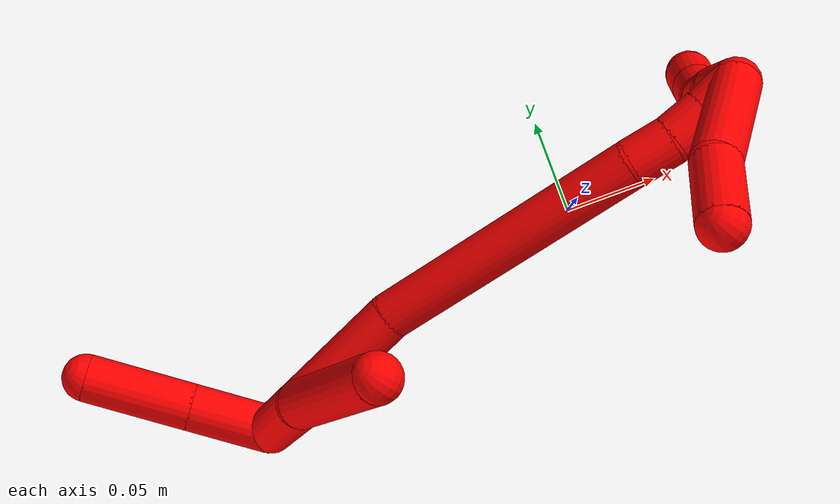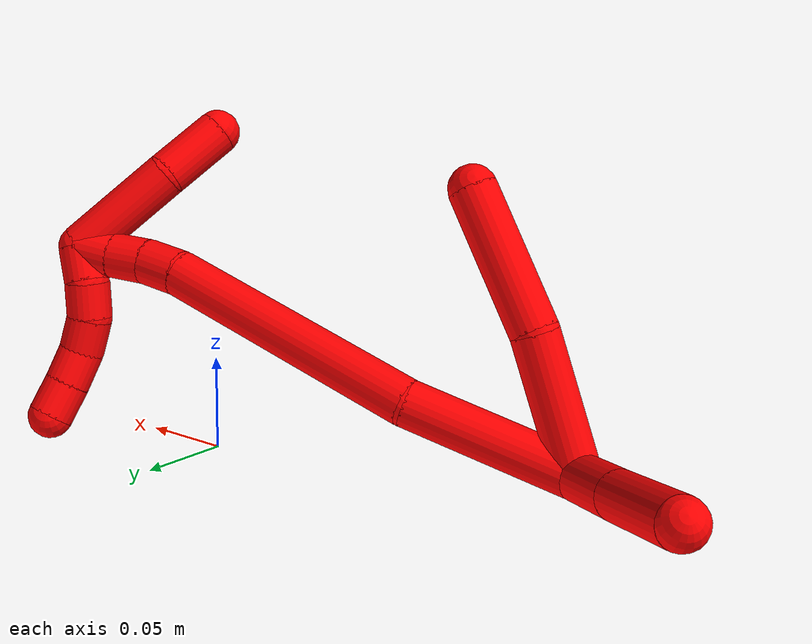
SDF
<sdf version="1.7">
 <world name="default">
  <model name="2">
   <static>0</static>
   <link name="2">
    <collision name="collision-cylinder-e_1_2_8">
     <pose>0.021486 -0.024556 0.016529 0.978353 0.627865 0.342282</pose>
     <geometry><cylinder><radius>0.0125</radius><length>0.073152</length></cylinder></geometry>
     <surface>
      <friction><ode><mu>1.16</mu><mu2>1.16</mu2><slip1>0</slip1><slip2>0</slip2></ode></friction>
      <contact><ode><kp>1e+06</kp><kd>1</kd><max_vel>0</max_vel><min_depth>0.001</min_depth></ode></contact>
     </surface>
    </collision>
    <visual name="visual-cylinder-e_1_2_8">
     <pose>0.021486 -0.024556 0.016529 0.978353 0.627865 0.342282</pose>
     <geometry><cylinder><radius>0.0125</radius><length>0.073152</length></cylinder></geometry>
     <material><ambient>1 0 0 1</ambient></material>
    </visual>
    <collision name="collision-cylinder-e_2_8_6">
     <pose>0.069204 -0.075721 0.042009 1.24627 0.751496 0.552504</pose>
     <geometry><cylinder><radius>0.0125</radius><length>0.076848</length></cylinder></geometry>
     <surface>
      <friction><ode><mu>1.16</mu><mu2>1.16</mu2><slip1>0</slip1><slip2>0</slip2></ode></friction>
      <contact><ode><kp>1e+06</kp><kd>1</kd><max_vel>0</max_vel><min_depth>0.001</min_depth></ode></contact>
     </surface>
    </collision>
    <visual name="visual-cylinder-e_2_8_6">
     <pose>0.069204 -0.075721 0.042009 1.24627 0.751496 0.552504</pose>
     <geometry><cylinder><radius>0.0125</radius><length>0.076848</length></cylinder></geometry>
     <material><ambient>1 0 0 1</ambient></material>
    </visual>
    <collision name="collision-cylinder-e_1_2_9">
     <pose>-0.008827 0.007532 0.018691 -0.383097 -0.412848 0.081174</pose>
     <geometry><cylinder><radius>0.0125</radius><length>0.044</length></cylinder></geometry>
     <surface>
      <friction><ode><mu>1.16</mu><mu2>1.16</mu2><slip1>0</slip1><slip2>0</slip2></ode></friction>
      <contact><ode><kp>1e+06</kp><kd>1</kd><max_vel>0</max_vel><min_depth>0.001</min_depth></ode></contact>
     </surface>
    </collision>
    <visual name="visual-cylinder-e_1_2_9">
     <pose>-0.008827 0.007532 0.018691 -0.383097 -0.412848 0.081174</pose>
     <geometry><cylinder><radius>0.0125</radius><length>0.044</length></cylinder></geometry>
     <material><ambient>1 0 0 1</ambient></material>
    </visual>
    <collision name="collision-cylinder-e_2_9_5">
     <pose>-0.028693 0.024317 0.061393 -0.367797 -0.405259 0.07639</pose>
     <geometry><cylinder><radius>0.0125</radius><length>0.056</length></cylinder></geometry>
     <surface>
      <friction><ode><mu>1.16</mu><mu2>1.16</mu2><slip1>0</slip1><slip2>0</slip2></ode></friction>
      <contact><ode><kp>1e+06</kp><kd>1</kd><max_vel>0</max_vel><min_depth>0.001</min_depth></ode></contact>
     </surface>
    </collision>
    <visual name="visual-cylinder-e_2_9_5">
     <pose>-0.028693 0.024317 0.061393 -0.367797 -0.405259 0.07639</pose>
     <geometry><cylinder><radius>0.0125</radius><length>0.056</length></cylinder></geometry>
     <material><ambient>1 0 0 1</ambient></material>
    </visual>
    <collision name="collision-cylinder-e_1_2_10">
     <pose>0.045203 -0.00253 -0.001272 2.03662 1.50824 1.97993</pose>
     <geometry><cylinder><radius>0.0125</radius><length>0.090582</length></cylinder></geometry>
     <surface>
      <friction><ode><mu>1.16</mu><mu2>1.16</mu2><slip1>0</slip1><slip2>0</slip2></ode></friction>
      <contact><ode><kp>1e+06</kp><kd>1</kd><max_vel>0</max_vel><min_depth>0.001</min_depth></ode></contact>
     </surface>
    </collision>
    <visual name="visual-cylinder-e_1_2_10">
     <pose>0.045203 -0.00253 -0.001272 2.03662 1.50824 1.97993</pose>
     <geometry><cylinder><radius>0.0125</radius><length>0.090582</length></cylinder></geometry>
     <material><ambient>1 0 0 1</ambient></material>
    </visual>
    <collision name="collision-cylinder-e_2_10_11">
     <pose>0.160968 -0.020635 -0.012962 2.16036 1.31122 1.92747</pose>
     <geometry><cylinder><radius>0.0125</radius><length>0.146017</length></cylinder></geometry>
     <surface>
      <friction><ode><mu>1.16</mu><mu2>1.16</mu2><slip1>0</slip1><slip2>0</slip2></ode></friction>
      <contact><ode><kp>1e+06</kp><kd>1</kd><max_vel>0</max_vel><min_depth>0.001</min_depth></ode></contact>
     </surface>
    </collision>
    <visual name="visual-cylinder-e_2_10_11">
     <pose>0.160968 -0.020635 -0.012962 2.16036 1.31122 1.92747</pose>
     <geometry><cylinder><radius>0.0125</radius><length>0.146017</length></cylinder></geometry>
     <material><ambient>1 0 0 1</ambient></material>
    </visual>
    <collision name="collision-cylinder-e_3_11_12">
     <pose>0.242256 -0.037314 -0.026425 2.79369 1.2776 2.67691</pose>
     <geometry><cylinder><radius>0.0125</radius><length>0.022407</length></cylinder></geometry>
     <surface>
      <friction><ode><mu>1.16</mu><mu2>1.16</mu2><slip1>0</slip1><slip2>0</slip2></ode></friction>
      <contact><ode><kp>1e+06</kp><kd>1</kd><max_vel>0</max_vel><min_depth>0.001</min_depth></ode></contact>
     </surface>
    </collision>
    <visual name="visual-cylinder-e_3_11_12">
     <pose>0.242256 -0.037314 -0.026425 2.79369 1.2776 2.67691</pose>
     <geometry><cylinder><radius>0.0125</radius><length>0.022407</length></cylinder></geometry>
     <material><ambient>1 0 0 1</ambient></material>
    </visual>
    <collision name="collision-cylinder-e_4_12_13">
     <pose>0.263027 -0.037627 -0.031686 -2.79862 1.34062 -2.71143</pose>
     <geometry><cylinder><radius>0.0125</radius><length>0.020636</length></cylinder></geometry>
     <surface>
      <friction><ode><mu>1.16</mu><mu2>1.16</mu2><slip1>0</slip1><slip2>0</slip2></ode></friction>
      <contact><ode><kp>1e+06</kp><kd>1</kd><max_vel>0</max_vel><min_depth>0.001</min_depth></ode></contact>
     </surface>
    </collision>
    <visual name="visual-cylinder-e_4_12_13">
     <pose>0.263027 -0.037627 -0.031686 -2.79862 1.34062 -2.71143</pose>
     <geometry><cylinder><radius>0.0125</radius><length>0.020636</length></cylinder></geometry>
     <material><ambient>1 0 0 1</ambient></material>
    </visual>
    <collision name="collision-cylinder-e_5_13_1">
     <pose>0.283178 -0.036322 -0.035018 -2.71023 1.44992 -2.6567</pose>
     <geometry><cylinder><radius>0.0125</radius><length>0.020358</length></cylinder></geometry>
     <surface>
      <friction><ode><mu>1.16</mu><mu2>1.16</mu2><slip1>0</slip1><slip2>0</slip2></ode></friction>
      <contact><ode><kp>1e+06</kp><kd>1</kd><max_vel>0</max_vel><min_depth>0.001</min_depth></ode></contact>
     </surface>
    </collision>
    <visual name="visual-cylinder-e_5_13_1">
     <pose>0.283178 -0.036322 -0.035018 -2.71023 1.44992 -2.6567</pose>
     <geometry><cylinder><radius>0.0125</radius><length>0.020358</length></cylinder></geometry>
     <material><ambient>1 0 0 1</ambient></material>
    </visual>
    <collision name="collision-cylinder-e_1_1_14">
     <pose>0.277856 -0.061169 -0.026887 1.22118 -0.519197 -0.367527</pose>
     <geometry><cylinder><radius>0.0125</radius><length>0.06218</length></cylinder></geometry>
     <surface>
      <friction><ode><mu>1.16</mu><mu2>1.16</mu2><slip1>0</slip1><slip2>0</slip2></ode></friction>
      <contact><ode><kp>1e+06</kp><kd>1</kd><max_vel>0</max_vel><min_depth>0.001</min_depth></ode></contact>
     </surface>
    </collision>
    <visual name="visual-cylinder-e_1_1_14">
     <pose>0.277856 -0.061169 -0.026887 1.22118 -0.519197 -0.367527</pose>
     <geometry><cylinder><radius>0.0125</radius><length>0.06218</length></cylinder></geometry>
     <material><ambient>1 0 0 1</ambient></material>
    </visual>
    <collision name="collision-cylinder-e_2_14_4">
     <pose>0.25454 -0.103678 -0.016528 1.50602 -0.430384 -0.404125</pose>
     <geometry><cylinder><radius>0.0125</radius><length>0.03782</length></cylinder></geometry>
     <surface>
      <friction><ode><mu>1.16</mu><mu2>1.16</mu2><slip1>0</slip1><slip2>0</slip2></ode></friction>
      <contact><ode><kp>1e+06</kp><kd>1</kd><max_vel>0</max_vel><min_depth>0.001</min_depth></ode></contact>
     </surface>
    </collision>
    <visual name="visual-cylinder-e_2_14_4">
     <pose>0.25454 -0.103678 -0.016528 1.50602 -0.430384 -0.404125</pose>
     <geometry><cylinder><radius>0.0125</radius><length>0.03782</length></cylinder></geometry>
     <material><ambient>1 0 0 1</ambient></material>
    </visual>
    <collision name="collision-cylinder-e_1_1_15">
     <pose>0.288208 -0.027941 -0.039646 -1.99077 -0.532225 0.795659</pose>
     <geometry><cylinder><radius>0.0125</radius><length>0.02</length></cylinder></geometry>
     <surface>
      <friction><ode><mu>1.16</mu><mu2>1.16</mu2><slip1>0</slip1><slip2>0</slip2></ode></friction>
      <contact><ode><kp>1e+06</kp><kd>1</kd><max_vel>0</max_vel><min_depth>0.001</min_depth></ode></contact>
     </surface>
    </collision>
    <visual name="visual-cylinder-e_1_1_15">
     <pose>0.288208 -0.027941 -0.039646 -1.99077 -0.532225 0.795659</pose>
     <geometry><cylinder><radius>0.0125</radius><length>0.02</length></cylinder></geometry>
     <material><ambient>1 0 0 1</ambient></material>
    </visual>
    <collision name="collision-cylinder-e_2_15_16">
     <pose>0.279661 -0.012607 -0.048835 -2.22082 -0.35461 0.69344</pose>
     <geometry><cylinder><radius>0.0125</radius><length>0.02</length></cylinder></geometry>
     <surface>
      <friction><ode><mu>1.16</mu><mu2>1.16</mu2><slip1>0</slip1><slip2>0</slip2></ode></friction>
      <contact><ode><kp>1e+06</kp><kd>1</kd><max_vel>0</max_vel><min_depth>0.001</min_depth></ode></contact>
     </surface>
    </collision>
    <visual name="visual-cylinder-e_2_15_16">
     <pose>0.279661 -0.012607 -0.048835 -2.22082 -0.35461 0.69344</pose>
     <geometry><cylinder><radius>0.0125</radius><length>0.02</length></cylinder></geometry>
     <material><ambient>1 0 0 1</ambient></material>
    </visual>
    <collision name="collision-cylinder-e_3_16_17">
     <pose>0.275786 0.002991 -0.060316 -2.19077 -0.040316 0.078285</pose>
     <geometry><cylinder><radius>0.0125</radius><length>0.02</length></cylinder></geometry>
     <surface>
      <friction><ode><mu>1.16</mu><mu2>1.16</mu2><slip1>0</slip1><slip2>0</slip2></ode></friction>
      <contact><ode><kp>1e+06</kp><kd>1</kd><max_vel>0</max_vel><min_depth>0.001</min_depth></ode></contact>
     </surface>
    </collision>
    <visual name="visual-cylinder-e_3_16_17">
     <pose>0.275786 0.002991 -0.060316 -2.19077 -0.040316 0.078285</pose>
     <geometry><cylinder><radius>0.0125</radius><length>0.02</length></cylinder></geometry>
     <material><ambient>1 0 0 1</ambient></material>
    </visual>
    <collision name="collision-cylinder-e_4_17_18">
     <pose>0.275836 0.020545 -0.069441 -1.90951 0.045333 -0.064023</pose>
     <geometry><cylinder><radius>0.0125</radius><length>0.02</length></cylinder></geometry>
     <surface>
      <friction><ode><mu>1.16</mu><mu2>1.16</mu2><slip1>0</slip1><slip2>0</slip2></ode></friction>
      <contact><ode><kp>1e+06</kp><kd>1</kd><max_vel>0</max_vel><min_depth>0.001</min_depth></ode></contact>
     </surface>
    </collision>
    <visual name="visual-cylinder-e_4_17_18">
     <pose>0.275836 0.020545 -0.069441 -1.90951 0.045333 -0.064023</pose>
     <geometry><cylinder><radius>0.0125</radius><length>0.02</length></cylinder></geometry>
     <material><ambient>1 0 0 1</ambient></material>
    </visual>
    <collision name="collision-cylinder-e_5_18_3">
     <pose>0.277162 0.039539 -0.075521 -1.8516 0.087446 -0.116176</pose>
     <geometry><cylinder><radius>0.0125</radius><length>0.02</length></cylinder></geometry>
     <surface>
      <friction><ode><mu>1.16</mu><mu2>1.16</mu2><slip1>0</slip1><slip2>0</slip2></ode></friction>
      <contact><ode><kp>1e+06</kp><kd>1</kd><max_vel>0</max_vel><min_depth>0.001</min_depth></ode></contact>
     </surface>
    </collision>
    <visual name="visual-cylinder-e_5_18_3">
     <pose>0.277162 0.039539 -0.075521 -1.8516 0.087446 -0.116176</pose>
     <geometry><cylinder><radius>0.0125</radius><length>0.02</length></cylinder></geometry>
     <material><ambient>1 0 0 1</ambient></material>
    </visual>
    <collision name="collision-sphere-3">
     <pose>0.278036 0.04911 -0.078282 0 -0 0</pose>
     <geometry><sphere><radius>0.0125</radius></sphere></geometry>
     <surface>
      <friction><ode><mu>1.16</mu><mu2>1.16</mu2><slip1>0</slip1><slip2>0</slip2></ode></friction>
      <contact><ode><kp>1e+06</kp><kd>1</kd><max_vel>0</max_vel><min_depth>0.001</min_depth></ode></contact>
     </surface>
    </collision>
    <visual name="visual-sphere-3">
     <pose>0.278036 0.04911 -0.078282 0 -0 0</pose>
     <geometry><sphere><radius>0.0125</radius></sphere></geometry>
     <material><ambient>1 0 0 1</ambient></material>
    </visual>
    <collision name="collision-sphere-10">
     <pose>0.090405 -0.005059 -0.002543 0 -0 0</pose>
     <geometry><sphere><radius>0.0125</radius></sphere></geometry>
     <surface>
      <friction><ode><mu>1.16</mu><mu2>1.16</mu2><slip1>0</slip1><slip2>0</slip2></ode></friction>
      <contact><ode><kp>1e+06</kp><kd>1</kd><max_vel>0</max_vel><min_depth>0.001</min_depth></ode></contact>
     </surface>
    </collision>
    <visual name="visual-sphere-10">
     <pose>0.090405 -0.005059 -0.002543 0 -0 0</pose>
     <geometry><sphere><radius>0.0125</radius></sphere></geometry>
     <material><ambient>1 0 0 1</ambient></material>
    </visual>
    <collision name="collision-sphere-5">
     <pose>-0.039732 0.03357 0.085404 0 -0 0</pose>
     <geometry><sphere><radius>0.0125</radius></sphere></geometry>
     <surface>
      <friction><ode><mu>1.16</mu><mu2>1.16</mu2><slip1>0</slip1><slip2>0</slip2></ode></friction>
      <contact><ode><kp>1e+06</kp><kd>1</kd><max_vel>0</max_vel><min_depth>0.001</min_depth></ode></contact>
     </surface>
    </collision>
    <visual name="visual-sphere-5">
     <pose>-0.039732 0.03357 0.085404 0 -0 0</pose>
     <geometry><sphere><radius>0.0125</radius></sphere></geometry>
     <material><ambient>1 0 0 1</ambient></material>
    </visual>
    <collision name="collision-sphere-6">
     <pose>0.095437 -0.102331 0.050961 0 -0 0</pose>
     <geometry><sphere><radius>0.0125</radius></sphere></geometry>
     <surface>
      <friction><ode><mu>1.16</mu><mu2>1.16</mu2><slip1>0</slip1><slip2>0</slip2></ode></friction>
      <contact><ode><kp>1e+06</kp><kd>1</kd><max_vel>0</max_vel><min_depth>0.001</min_depth></ode></contact>
     </surface>
    </collision>
    <visual name="visual-sphere-6">
     <pose>0.095437 -0.102331 0.050961 0 -0 0</pose>
     <geometry><sphere><radius>0.0125</radius></sphere></geometry>
     <material><ambient>1 0 0 1</ambient></material>
    </visual>
    <collision name="collision-sphere-9">
     <pose>-0.017654 0.015065 0.037381 0 -0 0</pose>
     <geometry><sphere><radius>0.0125</radius></sphere></geometry>
     <surface>
      <friction><ode><mu>1.16</mu><mu2>1.16</mu2><slip1>0</slip1><slip2>0</slip2></ode></friction>
      <contact><ode><kp>1e+06</kp><kd>1</kd><max_vel>0</max_vel><min_depth>0.001</min_depth></ode></contact>
     </surface>
    </collision>
    <visual name="visual-sphere-9">
     <pose>-0.017654 0.015065 0.037381 0 -0 0</pose>
     <geometry><sphere><radius>0.0125</radius></sphere></geometry>
     <material><ambient>1 0 0 1</ambient></material>
    </visual>
    <collision name="collision-sphere-2">
     <geometry><sphere><radius>0.0125</radius></sphere></geometry>
     <surface>
      <friction><ode><mu>1.16</mu><mu2>1.16</mu2><slip1>0</slip1><slip2>0</slip2></ode></friction>
      <contact><ode><kp>1e+06</kp><kd>1</kd><max_vel>0</max_vel><min_depth>0.001</min_depth></ode></contact>
     </surface>
    </collision>
    <visual name="visual-sphere-2">
     <geometry><sphere><radius>0.0125</radius></sphere></geometry>
     <material><ambient>1 0 0 1</ambient></material>
    </visual>
    <collision name="collision-sphere-8">
     <pose>0.042971 -0.049112 0.033057 0 -0 0</pose>
     <geometry><sphere><radius>0.0125</radius></sphere></geometry>
     <surface>
      <friction><ode><mu>1.16</mu><mu2>1.16</mu2><slip1>0</slip1><slip2>0</slip2></ode></friction>
      <contact><ode><kp>1e+06</kp><kd>1</kd><max_vel>0</max_vel><min_depth>0.001</min_depth></ode></contact>
     </surface>
    </collision>
    <visual name="visual-sphere-8">
     <pose>0.042971 -0.049112 0.033057 0 -0 0</pose>
     <geometry><sphere><radius>0.0125</radius></sphere></geometry>
     <material><ambient>1 0 0 1</ambient></material>
    </visual>
    <collision name="collision-sphere-11">
     <pose>0.23153 -0.03621 -0.023381 0 -0 0</pose>
     <geometry><sphere><radius>0.0125</radius></sphere></geometry>
     <surface>
      <friction><ode><mu>1.16</mu><mu2>1.16</mu2><slip1>0</slip1><slip2>0</slip2></ode></friction>
      <contact><ode><kp>1e+06</kp><kd>1</kd><max_vel>0</max_vel><min_depth>0.001</min_depth></ode></contact>
     </surface>
    </collision>
    <visual name="visual-sphere-11">
     <pose>0.23153 -0.03621 -0.023381 0 -0 0</pose>
     <geometry><sphere><radius>0.0125</radius></sphere></geometry>
     <material><ambient>1 0 0 1</ambient></material>
    </visual>
    <collision name="collision-sphere-12">
     <pose>0.252981 -0.038418 -0.029469 0 -0 0</pose>
     <geometry><sphere><radius>0.0125</radius></sphere></geometry>
     <surface>
      <friction><ode><mu>1.16</mu><mu2>1.16</mu2><slip1>0</slip1><slip2>0</slip2></ode></friction>
      <contact><ode><kp>1e+06</kp><kd>1</kd><max_vel>0</max_vel><min_depth>0.001</min_depth></ode></contact>
     </surface>
    </collision>
    <visual name="visual-sphere-12">
     <pose>0.252981 -0.038418 -0.029469 0 -0 0</pose>
     <geometry><sphere><radius>0.0125</radius></sphere></geometry>
     <material><ambient>1 0 0 1</ambient></material>
    </visual>
    <collision name="collision-sphere-13">
     <pose>0.273073 -0.036835 -0.033903 0 -0 0</pose>
     <geometry><sphere><radius>0.0125</radius></sphere></geometry>
     <surface>
      <friction><ode><mu>1.16</mu><mu2>1.16</mu2><slip1>0</slip1><slip2>0</slip2></ode></friction>
      <contact><ode><kp>1e+06</kp><kd>1</kd><max_vel>0</max_vel><min_depth>0.001</min_depth></ode></contact>
     </surface>
    </collision>
    <visual name="visual-sphere-13">
     <pose>0.273073 -0.036835 -0.033903 0 -0 0</pose>
     <geometry><sphere><radius>0.0125</radius></sphere></geometry>
     <material><ambient>1 0 0 1</ambient></material>
    </visual>
    <collision name="collision-sphere-1">
     <pose>0.293282 -0.035809 -0.036133 0 -0 0</pose>
     <geometry><sphere><radius>0.0125</radius></sphere></geometry>
     <surface>
      <friction><ode><mu>1.16</mu><mu2>1.16</mu2><slip1>0</slip1><slip2>0</slip2></ode></friction>
      <contact><ode><kp>1e+06</kp><kd>1</kd><max_vel>0</max_vel><min_depth>0.001</min_depth></ode></contact>
     </surface>
    </collision>
    <visual name="visual-sphere-1">
     <pose>0.293282 -0.035809 -0.036133 0 -0 0</pose>
     <geometry><sphere><radius>0.0125</radius></sphere></geometry>
     <material><ambient>1 0 0 1</ambient></material>
    </visual>
    <collision name="collision-sphere-18">
     <pose>0.276289 0.029967 -0.07276 0 -0 0</pose>
     <geometry><sphere><radius>0.0125</radius></sphere></geometry>
     <surface>
      <friction><ode><mu>1.16</mu><mu2>1.16</mu2><slip1>0</slip1><slip2>0</slip2></ode></friction>
      <contact><ode><kp>1e+06</kp><kd>1</kd><max_vel>0</max_vel><min_depth>0.001</min_depth></ode></contact>
     </surface>
    </collision>
    <visual name="visual-sphere-18">
     <pose>0.276289 0.029967 -0.07276 0 -0 0</pose>
     <geometry><sphere><radius>0.0125</radius></sphere></geometry>
     <material><ambient>1 0 0 1</ambient></material>
    </visual>
    <collision name="collision-sphere-14">
     <pose>0.262429 -0.086529 -0.017641 0 -0 0</pose>
     <geometry><sphere><radius>0.0125</radius></sphere></geometry>
     <surface>
      <friction><ode><mu>1.16</mu><mu2>1.16</mu2><slip1>0</slip1><slip2>0</slip2></ode></friction>
      <contact><ode><kp>1e+06</kp><kd>1</kd><max_vel>0</max_vel><min_depth>0.001</min_depth></ode></contact>
     </surface>
    </collision>
    <visual name="visual-sphere-14">
     <pose>0.262429 -0.086529 -0.017641 0 -0 0</pose>
     <geometry><sphere><radius>0.0125</radius></sphere></geometry>
     <material><ambient>1 0 0 1</ambient></material>
    </visual>
    <collision name="collision-sphere-4">
     <pose>0.24665 -0.120827 -0.015416 0 -0 0</pose>
     <geometry><sphere><radius>0.0125</radius></sphere></geometry>
     <surface>
      <friction><ode><mu>1.16</mu><mu2>1.16</mu2><slip1>0</slip1><slip2>0</slip2></ode></friction>
      <contact><ode><kp>1e+06</kp><kd>1</kd><max_vel>0</max_vel><min_depth>0.001</min_depth></ode></contact>
     </surface>
    </collision>
    <visual name="visual-sphere-4">
     <pose>0.24665 -0.120827 -0.015416 0 -0 0</pose>
     <geometry><sphere><radius>0.0125</radius></sphere></geometry>
     <material><ambient>1 0 0 1</ambient></material>
    </visual>
    <collision name="collision-sphere-15">
     <pose>0.283133 -0.020073 -0.04316 0 -0 0</pose>
     <geometry><sphere><radius>0.0125</radius></sphere></geometry>
     <surface>
      <friction><ode><mu>1.16</mu><mu2>1.16</mu2><slip1>0</slip1><slip2>0</slip2></ode></friction>
      <contact><ode><kp>1e+06</kp><kd>1</kd><max_vel>0</max_vel><min_depth>0.001</min_depth></ode></contact>
     </surface>
    </collision>
    <visual name="visual-sphere-15">
     <pose>0.283133 -0.020073 -0.04316 0 -0 0</pose>
     <geometry><sphere><radius>0.0125</radius></sphere></geometry>
     <material><ambient>1 0 0 1</ambient></material>
    </visual>
    <collision name="collision-sphere-16">
     <pose>0.276189 -0.005142 -0.054511 0 -0 0</pose>
     <geometry><sphere><radius>0.0125</radius></sphere></geometry>
     <surface>
      <friction><ode><mu>1.16</mu><mu2>1.16</mu2><slip1>0</slip1><slip2>0</slip2></ode></friction>
      <contact><ode><kp>1e+06</kp><kd>1</kd><max_vel>0</max_vel><min_depth>0.001</min_depth></ode></contact>
     </surface>
    </collision>
    <visual name="visual-sphere-16">
     <pose>0.276189 -0.005142 -0.054511 0 -0 0</pose>
     <geometry><sphere><radius>0.0125</radius></sphere></geometry>
     <material><ambient>1 0 0 1</ambient></material>
    </visual>
    <collision name="collision-sphere-17">
     <pose>0.275382 0.011123 -0.066122 0 -0 0</pose>
     <geometry><sphere><radius>0.0125</radius></sphere></geometry>
     <surface>
      <friction><ode><mu>1.16</mu><mu2>1.16</mu2><slip1>0</slip1><slip2>0</slip2></ode></friction>
      <contact><ode><kp>1e+06</kp><kd>1</kd><max_vel>0</max_vel><min_depth>0.001</min_depth></ode></contact>
     </surface>
    </collision>
    <visual name="visual-sphere-17">
     <pose>0.275382 0.011123 -0.066122 0 -0 0</pose>
     <geometry><sphere><radius>0.0125</radius></sphere></geometry>
     <material><ambient>1 0 0 1</ambient></material>
    </visual>
    <inertial>
     <pose>0.138601 -0.025054 -0.004588 0 -0 0</pose>
     <mass>0.75</mass>
     <inertia>
      <ixx>0.000189</ixx>
      <ixy>0</ixy>
      <ixz>0</ixz>
      <iyy>0.000484</iyy>
      <iyz>0</iyz>
      <izz>-0.000223</izz>
     </inertia>
    </inertial>
   </link>
   <pose>-0.188773 -0.056805 0.011485 -0.885746 -0.305114 0.459296</pose>
  </model>
 </world>
</sdf>
